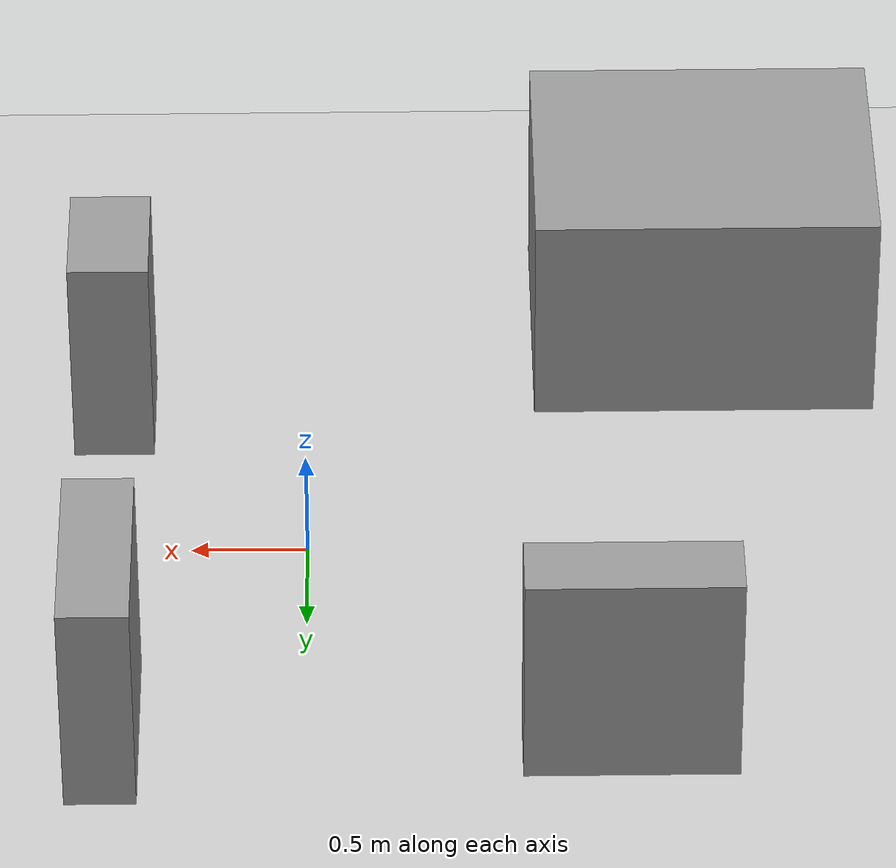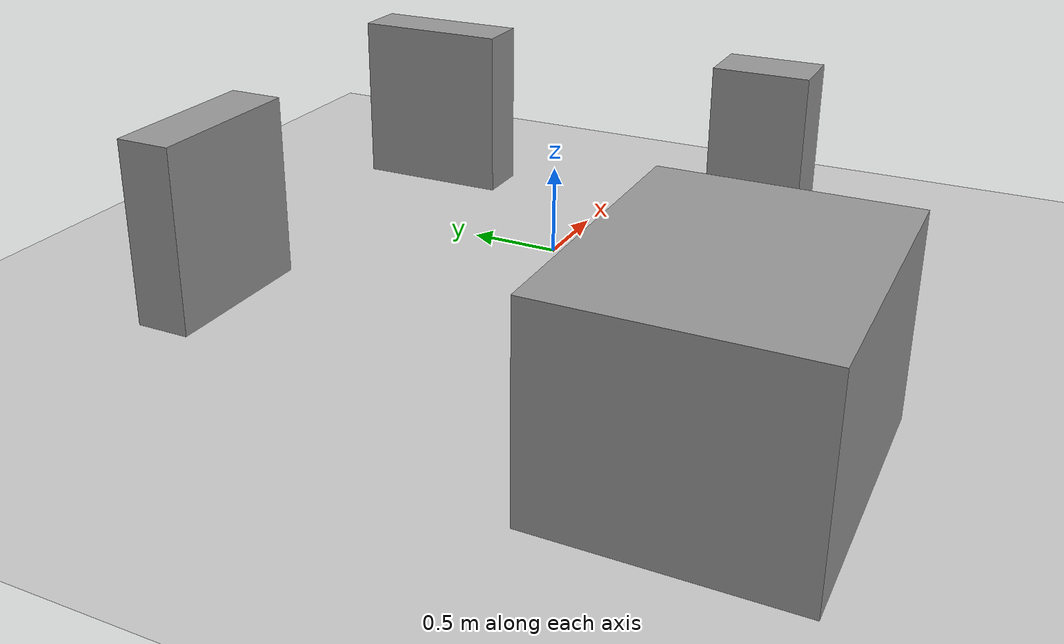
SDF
<sdf version="1.6">
 <world name="default">
  <plugin name="gazebo_ros_state" filename="libgazebo_ros_state.so">
   <ros><namespace>/gazebo</namespace></ros>
   <update_rate>1.0</update_rate>
  </plugin>
  <include><uri>model://ground_plane</uri></include>
  <include><uri>model://sun</uri></include>
  <scene><shadows>false</shadows></scene>
  <physics type="ode">
   <real_time_update_rate>2500.0</real_time_update_rate>
   <max_step_size>0.001</max_step_size>
   <real_time_factor>2.5</real_time_factor>
   <ode>
    <solver>
     <type>quick</type>
     <iters>150</iters>
     <precon_iters>0</precon_iters>
     <sor>1.400000</sor>
     <use_dynamic_moi_rescaling>1</use_dynamic_moi_rescaling>
    </solver>
    <constraints>
     <cfm>0.00001</cfm>
     <erp>0.2</erp>
     <contact_max_correcting_vel>2000.000000</contact_max_correcting_vel>
     <contact_surface_layer>0.01000</contact_surface_layer>
    </constraints>
   </ode>
  </physics>
  <model name="obstacle1">
   <pose>-1.75 -1.55 0 0 0 0</pose>
   <static>true</static>
   <link name="link">
    <collision name="collision">
     <pose>0 0 0.5 0 0 0</pose>
     <geometry><box><size>1.50 1.20 1.0</size></box></geometry>
    </collision>
    <visual name="visual">
     <pose>0 0 0.5 0 0 0</pose>
     <geometry><box><size>1.50 1.20 1.0</size></box></geometry>
     <material>
      <script><uri>file://media/materials/scripts/gazebo.material</uri><name>Gazebo/Grey</name></script>
     </material>
    </visual>
   </link>
  </model>
  <model name="obstacle2">
   <pose>-1.35 1.35 0 0 0 1.5708</pose>
   <static>true</static>
   <link name="link">
    <collision name="collision">
     <pose>0 0 0.5 0 0 0</pose>
     <geometry><box><size>0.30 0.90 1.0</size></box></geometry>
    </collision>
    <visual name="visual">
     <pose>0 0 0.5 0 0 0</pose>
     <geometry><box><size>0.30 0.90 1.0</size></box></geometry>
     <material>
      <script><uri>file://media/materials/scripts/gazebo.material</uri><name>Gazebo/Grey</name></script>
     </material>
    </visual>
   </link>
  </model>
  <model name="obstacle3">
   <pose>0.85 1.20 0 0 0 0</pose>
   <static>true</static>
   <link name="link">
    <collision name="collision">
     <pose>0 0 0.5 0 0 0</pose>
     <geometry><box><size>0.30 0.90 1.0</size></box></geometry>
    </collision>
    <visual name="visual">
     <pose>0 0 0.5 0 0 0</pose>
     <geometry><box><size>0.30 0.90 1.0</size></box></geometry>
     <material>
      <script><uri>file://media/materials/scripts/gazebo.material</uri><name>Gazebo/Grey</name></script>
     </material>
    </visual>
   </link>
  </model>
  <model name="obstacle4">
   <pose>0.85 -0.95 0 0 0 0</pose>
   <static>true</static>
   <link name="link">
    <collision name="collision">
     <pose>0 0 0.5 0 0 0</pose>
     <geometry><box><size>0.35 0.55 1.0</size></box></geometry>
    </collision>
    <visual name="visual">
     <pose>0 0 0.5 0 0 0</pose>
     <geometry><box><size>0.35 0.55 1.0</size></box></geometry>
     <material>
      <script><uri>file://media/materials/scripts/gazebo.material</uri><name>Gazebo/Grey</name></script>
     </material>
    </visual>
   </link>
  </model>
 </world>
</sdf>
